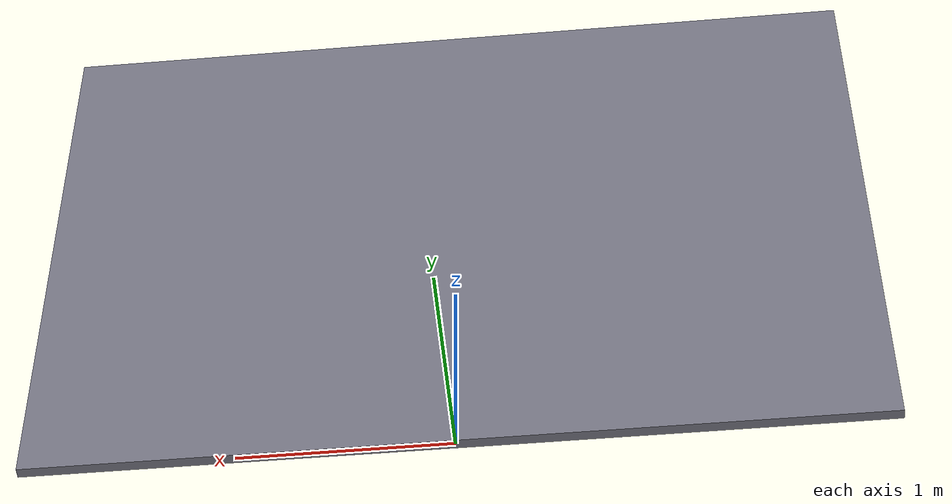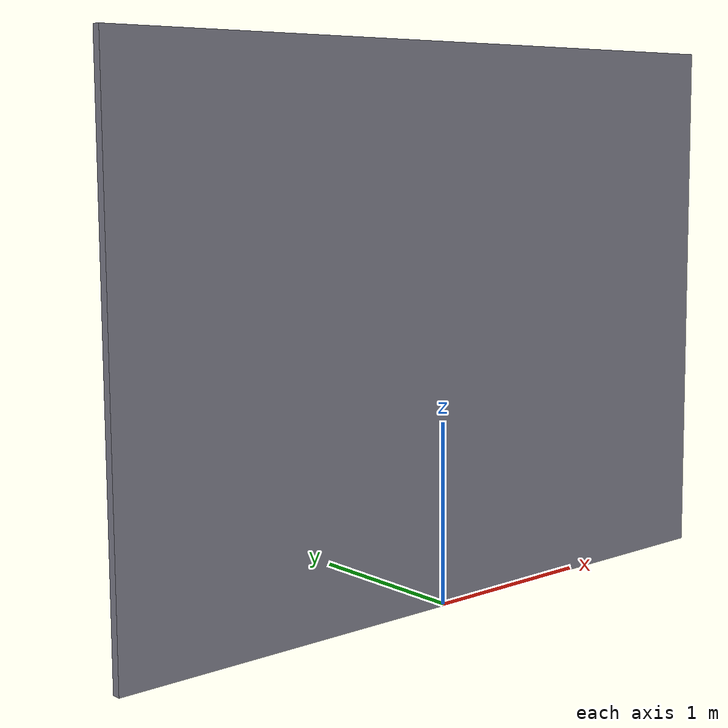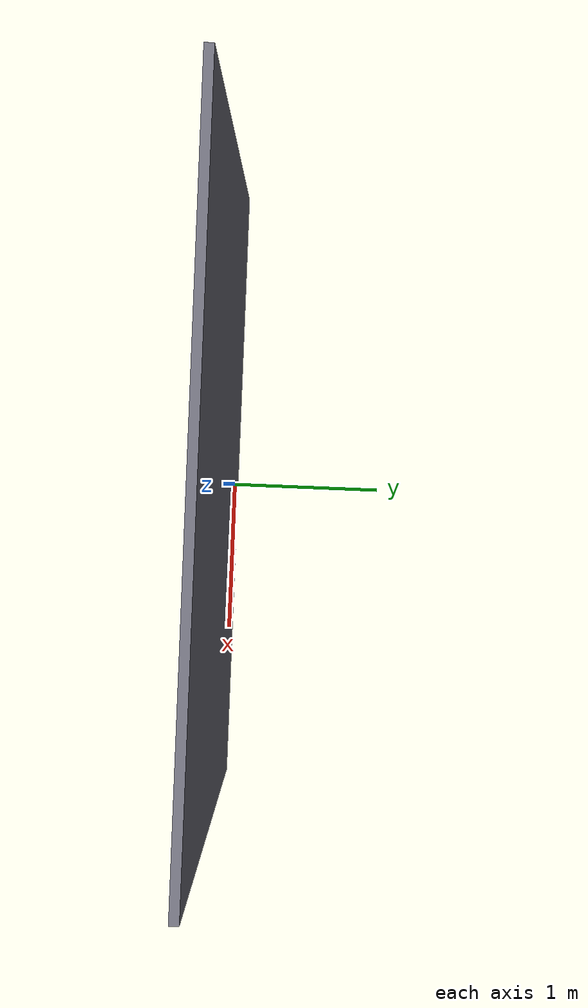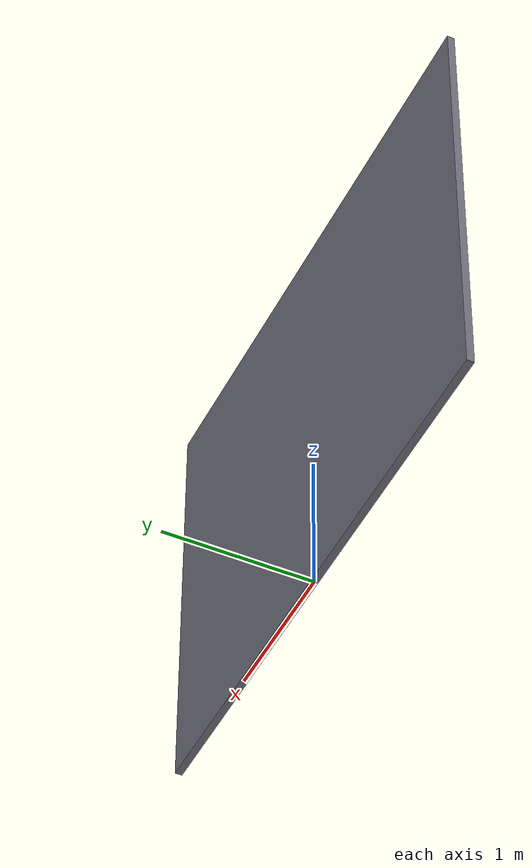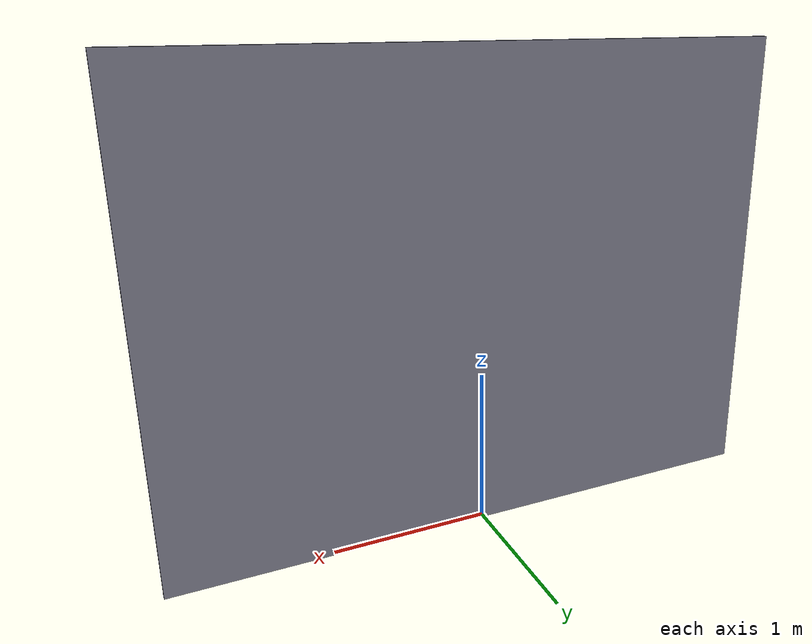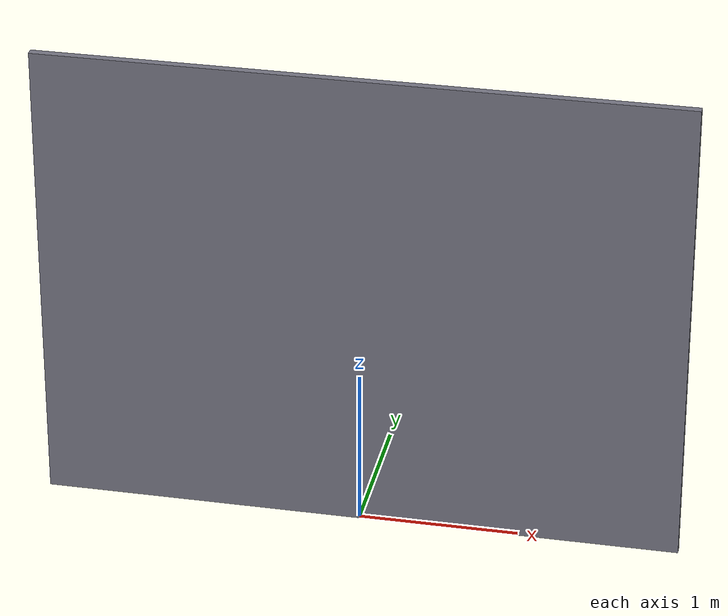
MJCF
<mujoco model="container_wall">
  <worldbody>
    <!-- Vertical container wall in x-z plane, normal along +y -->
    <!-- Wall dimensions: 4m wide (x) x 3m tall (z) x 0.05m thick (y) -->
    <body name="wall" pos="0 0 1.5">
      <geom name="container_wall"
            type="box"
            pos="0 0 0"
            size="2.0 0.025 1.5"
            friction="0.5 0.02 0.001"
            solref="0.01 1"
            solimp="0.95 0.99 0.001"
            rgba="0.45 0.45 0.50 1"
            contype="1"
            conaffinity="1"/>
    </body>
  </worldbody>
</mujoco>
